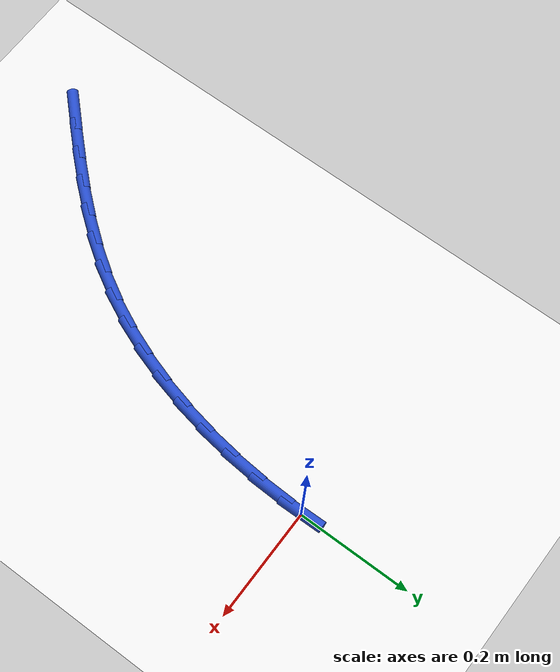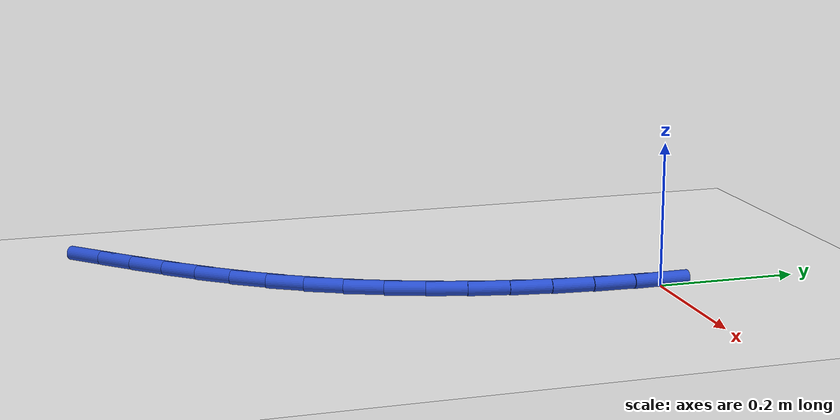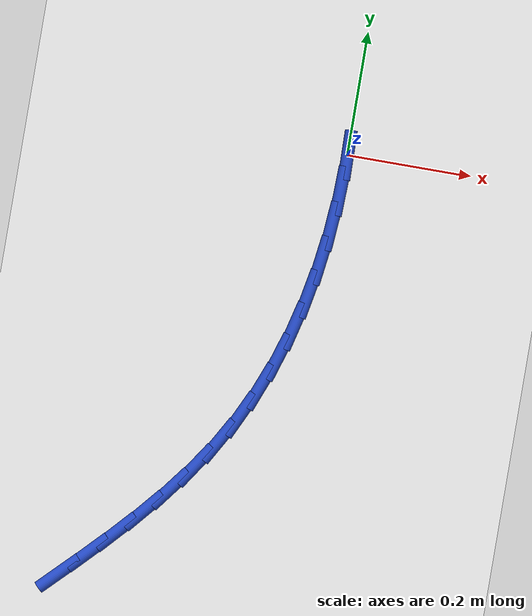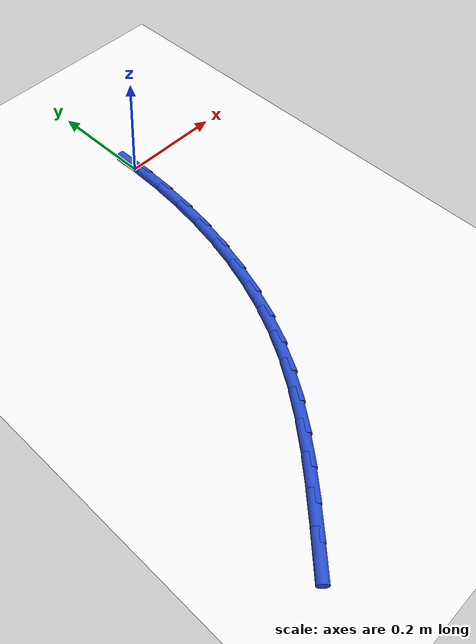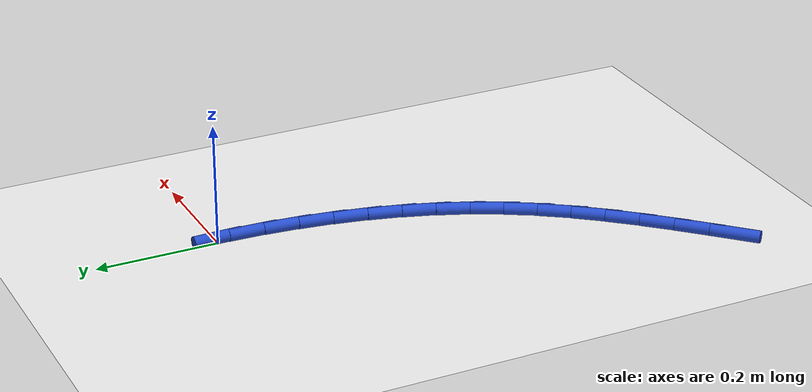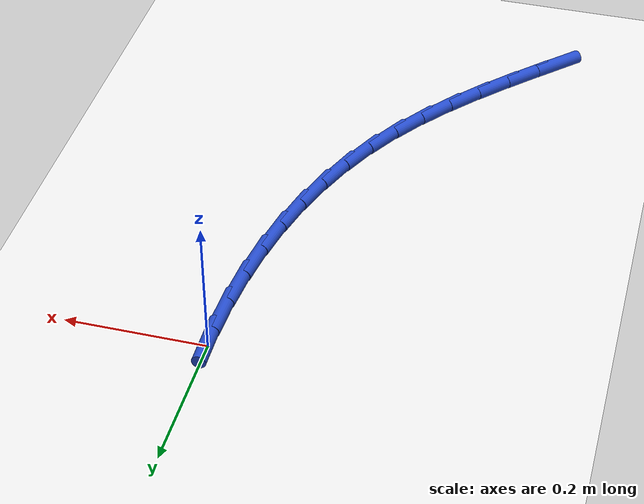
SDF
<sdf version="1.6">
 <world name="default">
  <model name="ground_plane">
   <static>1</static>
   <link name="link">
    <collision name="collision">
     <geometry><plane><normal>0 0 1</normal><size>100 100</size></plane></geometry>
     <surface><friction><ode><mu>100</mu><mu2>50</mu2></ode></friction></surface>
    </collision>
    <visual name="visual">
     <cast_shadows>0</cast_shadows>
     <geometry><plane><normal>0 0 1</normal><size>100 100</size></plane></geometry>
     <material>
      <script><uri>file://media/materials/scripts/gazebo.material</uri><name>Gazebo/WhiteGlow</name></script>
     </material>
    </visual>
   </link>
  </model>
  <model name="line">
   <link name="link_0">
    <pose>-4.336808689942018e-17 1.6653345369377348e-16 0.01 0 1.57 -1.5552696449122063</pose>
    <collision name="collision">
     <geometry><cylinder><radius>0.01</radius><length>0.08</length></cylinder></geometry>
    </collision>
    <visual name="visual">
     <material>
      <script><name>Gazebo/Blue</name><uri>file://media/materials/scripts/gazebo.material</uri></script>
     </material>
     <geometry><cylinder><radius>0.01</radius><length>0.08</length></cylinder></geometry>
    </visual>
   </link>
   <link name="link_115">
    <pose>-0.34214801634089564 -0.7341494631045486 0.01 0 1.57 0.7818001417951917</pose>
    <collision name="collision">
     <geometry><cylinder><radius>0.01</radius><length>0.08</length></cylinder></geometry>
    </collision>
    <visual name="visual">
     <material>
      <script><name>Gazebo/Blue</name><uri>file://media/materials/scripts/gazebo.material</uri></script>
     </material>
     <geometry><cylinder><radius>0.01</radius><length>0.08</length></cylinder></geometry>
    </visual>
   </link>
   <link name="link_116">
    <pose>-0.3018894790907821 -0.6941795906513252 0.01 0 1.57 0.7978591930602688</pose>
    <collision name="collision">
     <geometry><cylinder><radius>0.01</radius><length>0.08</length></cylinder></geometry>
    </collision>
    <visual name="visual">
     <material>
      <script><name>Gazebo/Blue</name><uri>file://media/materials/scripts/gazebo.material</uri></script>
     </material>
     <geometry><cylinder><radius>0.01</radius><length>0.08</length></cylinder></geometry>
    </visual>
   </link>
   <link name="link_117">
    <pose>-0.2627126659748012 -0.6540140387951641 0.01 0 1.57 0.8251085622439072</pose>
    <collision name="collision">
     <geometry><cylinder><radius>0.01</radius><length>0.08</length></cylinder></geometry>
    </collision>
    <visual name="visual">
     <material>
      <script><name>Gazebo/Blue</name><uri>file://media/materials/scripts/gazebo.material</uri></script>
     </material>
     <geometry><cylinder><radius>0.01</radius><length>0.08</length></cylinder></geometry>
    </visual>
   </link>
   <link name="link_118">
    <pose>-0.22507045584840615 -0.6132569226669461 0.01 0 1.57 0.863917184268821</pose>
    <collision name="collision">
     <geometry><cylinder><radius>0.01</radius><length>0.08</length></cylinder></geometry>
    </collision>
    <visual name="visual">
     <material>
      <script><name>Gazebo/Blue</name><uri>file://media/materials/scripts/gazebo.material</uri></script>
     </material>
     <geometry><cylinder><radius>0.01</radius><length>0.08</length></cylinder></geometry>
    </visual>
   </link>
   <link name="link_119">
    <pose>-0.18941572756705205 -0.5715123573975537 0.01 0 1.57 0.9145319482251362</pose>
    <collision name="collision">
     <geometry><cylinder><radius>0.01</radius><length>0.08</length></cylinder></geometry>
    </collision>
    <visual name="visual">
     <material>
      <script><name>Gazebo/Blue</name><uri>file://media/materials/scripts/gazebo.material</uri></script>
     </material>
     <geometry><cylinder><radius>0.01</radius><length>0.08</length></cylinder></geometry>
    </visual>
   </link>
   <link name="link_120">
    <pose>-0.15620135998619222 -0.528384458117868 0.01 0 1.57 0.9769116938327094</pose>
    <collision name="collision">
     <geometry><cylinder><radius>0.01</radius><length>0.08</length></cylinder></geometry>
    </collision>
    <visual name="visual">
     <material>
      <script><name>Gazebo/Blue</name><uri>file://media/materials/scripts/gazebo.material</uri></script>
     </material>
     <geometry><cylinder><radius>0.01</radius><length>0.08</length></cylinder></geometry>
    </visual>
   </link>
   <link name="link_121">
    <pose>-0.1258802319612805 -0.4834773399587699 0.01 0 1.57 1.0500063941381337</pose>
    <collision name="collision">
     <geometry><cylinder><radius>0.01</radius><length>0.08</length></cylinder></geometry>
    </collision>
    <visual name="visual">
     <material>
      <script><name>Gazebo/Blue</name><uri>file://media/materials/scripts/gazebo.material</uri></script>
     </material>
     <geometry><cylinder><radius>0.01</radius><length>0.08</length></cylinder></geometry>
    </visual>
   </link>
   <link name="link_122">
    <pose>-0.09888595305501637 -0.4364171030739668 0.01 0 1.57 1.1251596949249538</pose>
    <collision name="collision">
     <geometry><cylinder><radius>0.01</radius><length>0.08</length></cylinder></geometry>
    </collision>
    <visual name="visual">
     <material>
      <script><name>Gazebo/Blue</name><uri>file://media/materials/scripts/gazebo.material</uri></script>
     </material>
     <geometry><cylinder><radius>0.01</radius><length>0.08</length></cylinder></geometry>
    </visual>
   </link>
   <link name="link_123">
    <pose>-0.07535876262975334 -0.3871645641339091 0.01 0 1.57 1.1960427546701262</pose>
    <collision name="collision">
     <geometry><cylinder><radius>0.01</radius><length>0.08</length></cylinder></geometry>
    </collision>
    <visual name="visual">
     <material>
      <script><name>Gazebo/Blue</name><uri>file://media/materials/scripts/gazebo.material</uri></script>
     </material>
     <geometry><cylinder><radius>0.01</radius><length>0.08</length></cylinder></geometry>
    </visual>
   </link>
   <link name="link_124">
    <pose>-0.05521045496490522 -0.33594118094553627 0.01 0 1.57 1.2625570909080766</pose>
    <collision name="collision">
     <geometry><cylinder><radius>0.01</radius><length>0.08</length></cylinder></geometry>
    </collision>
    <visual name="visual">
     <material>
      <script><name>Gazebo/Blue</name><uri>file://media/materials/scripts/gazebo.material</uri></script>
     </material>
     <geometry><cylinder><radius>0.01</radius><length>0.08</length></cylinder></geometry>
    </visual>
   </link>
   <link name="link_125">
    <pose>-0.03834679529360515 -0.28297529006955 0.01 0 1.57 1.3248982781037544</pose>
    <collision name="collision">
     <geometry><cylinder><radius>0.01</radius><length>0.08</length></cylinder></geometry>
    </collision>
    <visual name="visual">
     <material>
      <script><name>Gazebo/Blue</name><uri>file://media/materials/scripts/gazebo.material</uri></script>
     </material>
     <geometry><cylinder><radius>0.01</radius><length>0.08</length></cylinder></geometry>
    </visual>
   </link>
   <link name="link_126">
    <pose>-0.02467354884898652 -0.22849522806665193 0.01 0 1.57 1.3833537604699364</pose>
    <collision name="collision">
     <geometry><cylinder><radius>0.01</radius><length>0.08</length></cylinder></geometry>
    </collision>
    <visual name="visual">
     <material>
      <script><name>Gazebo/Blue</name><uri>file://media/materials/scripts/gazebo.material</uri></script>
     </material>
     <geometry><cylinder><radius>0.01</radius><length>0.08</length></cylinder></geometry>
    </visual>
   </link>
   <link name="link_127">
    <pose>-0.014096480864183279 -0.17272933149754593 0.01 0 1.57 1.4382677625035192</pose>
    <collision name="collision">
     <geometry><cylinder><radius>0.01</radius><length>0.08</length></cylinder></geometry>
    </collision>
    <visual name="visual">
     <material>
      <script><name>Gazebo/Blue</name><uri>file://media/materials/scripts/gazebo.material</uri></script>
     </material>
     <geometry><cylinder><radius>0.01</radius><length>0.08</length></cylinder></geometry>
    </visual>
   </link>
   <link name="link_128">
    <pose>-0.00652135657232875 -0.11590593692293369 0.01 0 1.57 1.4900148552685957</pose>
    <collision name="collision">
     <geometry><cylinder><radius>0.01</radius><length>0.08</length></cylinder></geometry>
    </collision>
    <visual name="visual">
     <material>
      <script><name>Gazebo/Blue</name><uri>file://media/materials/scripts/gazebo.material</uri></script>
     </material>
     <geometry><cylinder><radius>0.01</radius><length>0.08</length></cylinder></geometry>
    </visual>
   </link>
   <link name="link_129">
    <pose>-0.0018539412065564885 -0.05825338090351751 0.01 0 1.57 1.5389815955299988</pose>
    <collision name="collision">
     <geometry><cylinder><radius>0.01</radius><length>0.08</length></cylinder></geometry>
    </collision>
    <visual name="visual">
     <material>
      <script><name>Gazebo/Blue</name><uri>file://media/materials/scripts/gazebo.material</uri></script>
     </material>
     <geometry><cylinder><radius>0.01</radius><length>0.08</length></cylinder></geometry>
    </visual>
   </link>
  </model>
 </world>
</sdf>
